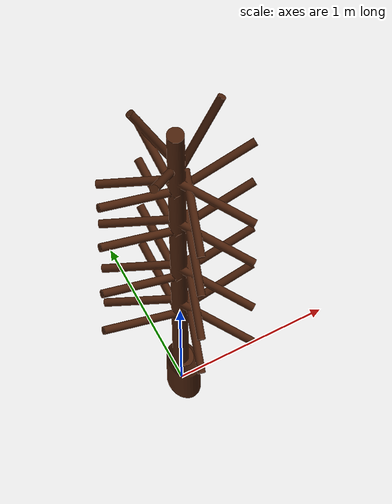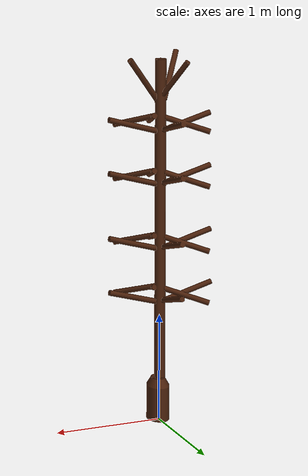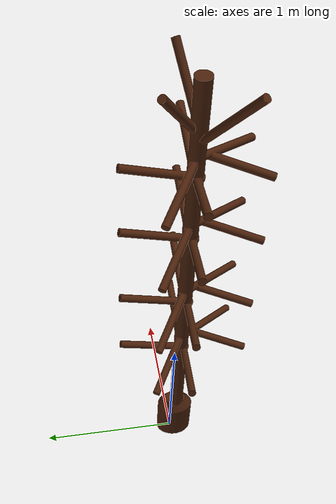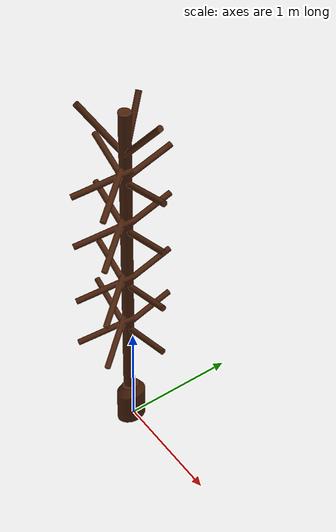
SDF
<sdf version="1.6">
 <world name="4_1">
  <light name="sun" type="directional">
   <pose>0 0 10 0 -0 0</pose>
   <diffuse>1 1 1 1</diffuse>
   <specular>0.2 0.2 0.2 1</specular>
   <attenuation>
    <range>1000</range>
    <constant>0.9</constant>
    <linear>0.01</linear>
    <quadratic>0.001</quadratic>
   </attenuation>
   <direction>-0.5 -0.5 -1</direction>
  </light>
  <physics name="default_physics" default="0" type="ode">
   <max_step_size>0.001</max_step_size>
   <real_time_factor>1</real_time_factor>
   <real_time_update_rate>1000</real_time_update_rate>
  </physics>
  <scene><ambient>1 1 1 1</ambient><background>0.0 0.0 0.0 1</background><shadows>0</shadows></scene>
  <spherical_coordinates>
   <surface_model>EARTH_WGS84</surface_model>
   <latitude_deg>0.00</latitude_deg>
   <longitude_deg>0.00</longitude_deg>
   <elevation>0</elevation>
   <heading_deg>0</heading_deg>
  </spherical_coordinates>
  <gravity>0 0 -9.8</gravity>
  <magnetic_field>6e-06 2.3e-05 -4.2e-05</magnetic_field>
  <atmosphere type="adiabatic"/>
  <model name="spindle_tree">
   <link name="spindle_tree_link">
    <inertial>
     <mass>50</mass>
     <inertia><ixx>1000</ixx><ixy>1000</ixy><ixz>1000</ixz><iyy>1000</iyy><iyz>1000</iyz><izz>1000</izz></inertia>
    </inertial>
    <collision name="spindle_tree_link_collision">
     <geometry>
      <mesh>
       <scale>1 1 1</scale>
       <uri>file:///media/mirko/Volume/GITHUB/Positioning_MetroAgriFor2024/models/spindle_tree/meshes/spindle3D.dae</uri>
      </mesh>
     </geometry>
    </collision>
    <visual name="spindle_tree_link_visual">
     <geometry>
      <mesh>
       <scale>1 1 1</scale>
       <uri>file:///media/mirko/Volume/GITHUB/Positioning_MetroAgriFor2024/models/spindle_tree/meshes/spindle3D.dae</uri>
      </mesh>
     </geometry>
    </visual>
   </link>
   <static>1</static>
   <pose>0 0 0 0 0 1.57</pose>
  </model>
  <model name="3">
   <link name="3_link">
    <inertial>
     <mass>0.0050968399592252805</mass>
     <inertia><ixx>1000</ixx><ixy>1000</ixy><ixz>1000</ixz><iyy>1000</iyy><iyz>1000</iyz><izz>1000</izz></inertia>
    </inertial>
    <collision name="3_link_collision">
     <geometry>
      <mesh>
       <scale>1 1 1</scale>
       <size>0.065 0.065 0.065</size>
       <uri>file:///media/mirko/Volume/GITHUB/Positioning_MetroAgriFor2024/models/apple/meshes/apple.dae</uri>
      </mesh>
     </geometry>
    </collision>
    <visual name="3_link_visual">
     <geometry>
      <mesh>
       <size>0.065 0.065 0.065</size>
       <scale>1 1 1</scale>
       <uri>file:///media/mirko/Volume/GITHUB/Positioning_MetroAgriFor2024/models/apple/meshes/apple.dae</uri>
      </mesh>
     </geometry>
     <material>
      <ambient>0.6568627450980392 0.39215686274509803 0.2784313725490196 1.0</ambient>
      <diffuse>0.7 0.9 0 1</diffuse>
      <specular>0.2 0.2 0.2 64</specular>
      <emissive>0.1 0 0.1 1</emissive>
     </material>
    </visual>
   </link>
   <static>1</static>
  </model>
  <model name="2">
   <link name="2_link">
    <inertial>
     <mass>0.0050968399592252805</mass>
     <inertia><ixx>1000</ixx><ixy>1000</ixy><ixz>1000</ixz><iyy>1000</iyy><iyz>1000</iyz><izz>1000</izz></inertia>
    </inertial>
    <collision name="2_link_collision">
     <geometry>
      <mesh>
       <scale>1 1 1</scale>
       <size>0.065 0.065 0.065</size>
       <uri>file:///media/mirko/Volume/GITHUB/Positioning_MetroAgriFor2024/models/apple/meshes/apple.dae</uri>
      </mesh>
     </geometry>
    </collision>
    <visual name="2_link_visual">
     <geometry>
      <mesh>
       <size>0.065 0.065 0.065</size>
       <scale>1 1 1</scale>
       <uri>file:///media/mirko/Volume/GITHUB/Positioning_MetroAgriFor2024/models/apple/meshes/apple.dae</uri>
      </mesh>
     </geometry>
     <material>
      <ambient>0.37254901960784315 0.11372549019607843 0.06666666666666667 1.0</ambient>
      <diffuse>0.7 0.9 0 1</diffuse>
      <specular>0.2 0.2 0.2 64</specular>
      <emissive>0.1 0 0.1 1</emissive>
     </material>
    </visual>
   </link>
   <static>1</static>
  </model>
  <model name="1">
   <link name="1_link">
    <inertial>
     <mass>0.0050968399592252805</mass>
     <inertia><ixx>1000</ixx><ixy>1000</ixy><ixz>1000</ixz><iyy>1000</iyy><iyz>1000</iyz><izz>1000</izz></inertia>
    </inertial>
    <collision name="1_link_collision">
     <geometry>
      <mesh>
       <scale>1 1 1</scale>
       <size>0.065 0.065 0.065</size>
       <uri>file:///media/mirko/Volume/GITHUB/Positioning_MetroAgriFor2024/models/apple/meshes/apple.dae</uri>
      </mesh>
     </geometry>
    </collision>
    <visual name="1_link_visual">
     <geometry>
      <mesh>
       <size>0.065 0.065 0.065</size>
       <scale>1 1 1</scale>
       <uri>file:///media/mirko/Volume/GITHUB/Positioning_MetroAgriFor2024/models/apple/meshes/apple.dae</uri>
      </mesh>
     </geometry>
     <material>
      <ambient>0.4843137254901961 0.2784313725490196 0.16862745098039217 1.0</ambient>
      <diffuse>0.7 0.9 0 1</diffuse>
      <specular>0.2 0.2 0.2 64</specular>
      <emissive>0.1 0 0.1 1</emissive>
     </material>
    </visual>
   </link>
   <static>1</static>
  </model>
 </world>
</sdf>
